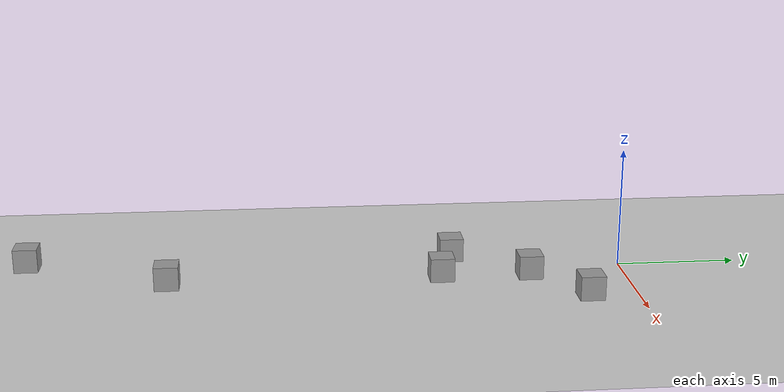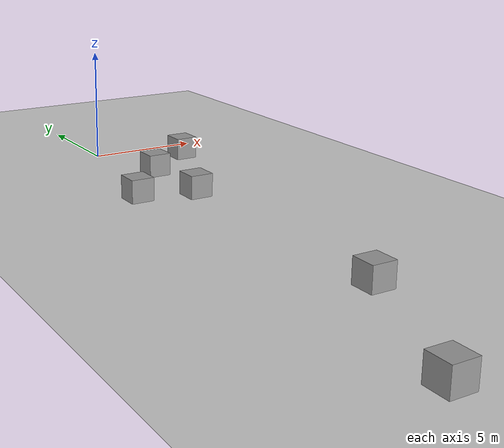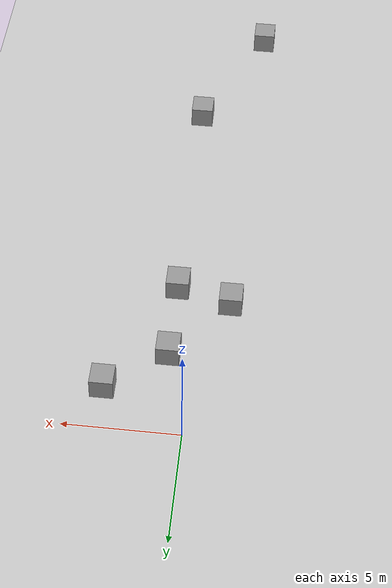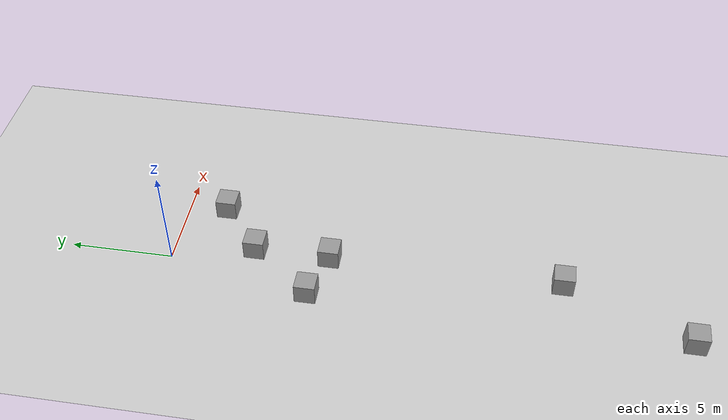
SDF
<sdf version="1.6">
 <world name="default">
  <model name="ground_plane">
   <static>1</static>
   <link name="link">
    <collision name="collision">
     <geometry><plane><normal>0 0 1</normal><size>100 100</size></plane></geometry>
     <surface><friction><ode><mu>100</mu><mu2>50</mu2></ode></friction></surface>
    </collision>
    <visual name="visual">
     <cast_shadows>0</cast_shadows>
     <geometry><plane><normal>0 0 1</normal><size>100 100</size></plane></geometry>
     <material>
      <script><uri>file://media/materials/scripts/gazebo.material</uri><name>Gazebo/Grey</name></script>
     </material>
    </visual>
   </link>
  </model>
  <model name="unit_box_3">
   <pose>0.978336 -7.6829 0.499995 0 1e-05 5e-06</pose>
   <link name="link">
    <inertial>
     <mass>1</mass>
     <inertia>
      <ixx>0.166667</ixx>
      <ixy>0</ixy>
      <ixz>0</ixz>
      <iyy>0.166667</iyy>
      <iyz>0</iyz>
      <izz>0.166667</izz>
     </inertia>
    </inertial>
    <collision name="collision"><geometry><box><size>1 1 1</size></box></geometry></collision>
    <visual name="visual">
     <geometry><box><size>1 1 1</size></box></geometry>
     <material>
      <script><name>Gazebo/Grey</name><uri>file://media/materials/scripts/gazebo.material</uri></script>
     </material>
    </visual>
   </link>
  </model>
  <model name="unit_box_28_clone_46">
   <pose>-1.40587 -7 0.499995 0 1e-05 0</pose>
   <link name="link">
    <inertial>
     <mass>1</mass>
     <inertia>
      <ixx>0.166667</ixx>
      <ixy>0</ixy>
      <ixz>0</ixz>
      <iyy>0.166667</iyy>
      <iyz>0</iyz>
      <izz>0.166667</izz>
     </inertia>
    </inertial>
    <collision name="collision"><geometry><box><size>1 1 1</size></box></geometry></collision>
    <visual name="visual">
     <geometry><box><size>1 1 1</size></box></geometry>
     <material>
      <script><name>Gazebo/Grey</name><uri>file://media/materials/scripts/gazebo.material</uri></script>
     </material>
    </visual>
   </link>
  </model>
  <model name="unit_box_28_clone_47">
   <pose>1.00001 -4 0.499995 0 1e-05 0</pose>
   <link name="link">
    <inertial>
     <mass>1</mass>
     <inertia>
      <ixx>0.166667</ixx>
      <ixy>0</ixy>
      <ixz>0</ixz>
      <iyy>0.166667</iyy>
      <iyz>0</iyz>
      <izz>0.166667</izz>
     </inertia>
    </inertial>
    <collision name="collision"><geometry><box><size>1 1 1</size></box></geometry></collision>
    <visual name="visual">
     <geometry><box><size>1 1 1</size></box></geometry>
     <material>
      <script><name>Gazebo/Grey</name><uri>file://media/materials/scripts/gazebo.material</uri></script>
     </material>
    </visual>
   </link>
  </model>
  <model name="unit_box_28_clone_48">
   <pose>3.52209 -2 0.499995 0 1e-05 0</pose>
   <link name="link">
    <inertial>
     <mass>1</mass>
     <inertia>
      <ixx>0.166667</ixx>
      <ixy>0</ixy>
      <ixz>0</ixz>
      <iyy>0.166667</iyy>
      <iyz>0</iyz>
      <izz>0.166667</izz>
     </inertia>
    </inertial>
    <collision name="collision"><geometry><box><size>1 1 1</size></box></geometry></collision>
    <visual name="visual">
     <geometry><box><size>1 1 1</size></box></geometry>
     <material>
      <script><name>Gazebo/Grey</name><uri>file://media/materials/scripts/gazebo.material</uri></script>
     </material>
    </visual>
   </link>
  </model>
  <model name="unit_box_28_clone_56">
   <pose>0.972072 -18.9151 0.5005 -0 -0 -0</pose>
   <link name="link">
    <inertial>
     <mass>1</mass>
     <inertia>
      <ixx>0.166667</ixx>
      <ixy>0</ixy>
      <ixz>0</ixz>
      <iyy>0.166667</iyy>
      <iyz>0</iyz>
      <izz>0.166667</izz>
     </inertia>
    </inertial>
    <collision name="collision"><geometry><box><size>1 1 1</size></box></geometry></collision>
    <visual name="visual">
     <geometry><box><size>1 1 1</size></box></geometry>
     <material>
      <script><name>Gazebo/Grey</name><uri>file://media/materials/scripts/gazebo.material</uri></script>
     </material>
    </visual>
   </link>
  </model>
  <model name="unit_box_28_clone_50_clone_19">
   <pose>-1.65785 -24.897 0.5 -0 -0 -0.005173</pose>
   <link name="link">
    <inertial>
     <mass>1</mass>
     <inertia>
      <ixx>0.166667</ixx>
      <ixy>0</ixy>
      <ixz>0</ixz>
      <iyy>0.166667</iyy>
      <iyz>0</iyz>
      <izz>0.166667</izz>
     </inertia>
    </inertial>
    <collision name="collision"><geometry><box><size>1 1 1</size></box></geometry></collision>
    <visual name="visual">
     <geometry><box><size>1 1 1</size></box></geometry>
     <material>
      <script><name>Gazebo/Grey</name><uri>file://media/materials/scripts/gazebo.material</uri></script>
     </material>
    </visual>
   </link>
  </model>
 </world>
</sdf>
